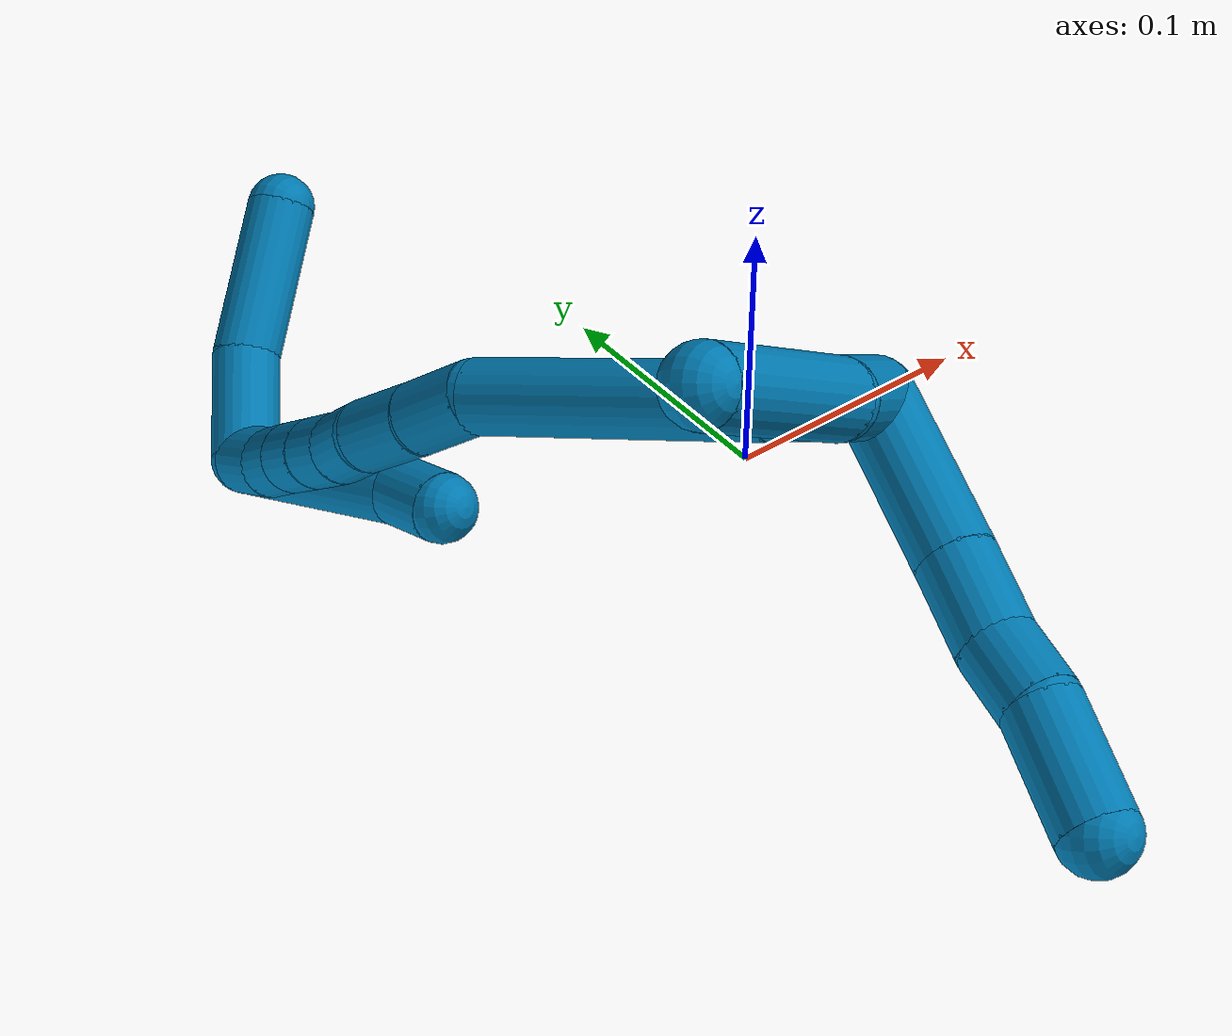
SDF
<sdf version="1.7">
 <world name="default">
  <model name="9">
   <static>0</static>
   <link name="9">
    <collision name="collision-cylinder-e_1_2_8">
     <pose>-0.002216 -0.023482 0.0169 0.946969 -0.076444 -0.039181</pose>
     <geometry><cylinder><radius>0.0125</radius><length>0.058033</length></cylinder></geometry>
     <surface>
      <friction><ode><mu>1.16</mu><mu2>1.16</mu2><slip1>0</slip1><slip2>0</slip2></ode></friction>
      <contact><ode><kp>1e+06</kp><kd>1</kd><max_vel>0</max_vel><min_depth>0.001</min_depth></ode></contact>
     </surface>
    </collision>
    <visual name="visual-cylinder-e_1_2_8">
     <pose>-0.002216 -0.023482 0.0169 0.946969 -0.076444 -0.039181</pose>
     <geometry><cylinder><radius>0.0125</radius><length>0.058033</length></cylinder></geometry>
     <material><ambient>0 0.490196 0.709804 1</ambient></material>
    </visual>
    <collision name="collision-cylinder-e_2_8_9">
     <pose>-0.005584 -0.058688 0.041935 0.964197 -0.080557 -0.042171</pose>
     <geometry><cylinder><radius>0.0125</radius><length>0.028631</length></cylinder></geometry>
     <surface>
      <friction><ode><mu>1.16</mu><mu2>1.16</mu2><slip1>0</slip1><slip2>0</slip2></ode></friction>
      <contact><ode><kp>1e+06</kp><kd>1</kd><max_vel>0</max_vel><min_depth>0.001</min_depth></ode></contact>
     </surface>
    </collision>
    <visual name="visual-cylinder-e_2_8_9">
     <pose>-0.005584 -0.058688 0.041935 0.964197 -0.080557 -0.042171</pose>
     <geometry><cylinder><radius>0.0125</radius><length>0.028631</length></cylinder></geometry>
     <material><ambient>0 0.490196 0.709804 1</ambient></material>
    </visual>
    <collision name="collision-cylinder-e_3_9_10">
     <pose>-0.008225 -0.078465 0.058739 0.748545 -0.125147 -0.049211</pose>
     <geometry><cylinder><radius>0.0125</radius><length>0.023852</length></cylinder></geometry>
     <surface>
      <friction><ode><mu>1.16</mu><mu2>1.16</mu2><slip1>0</slip1><slip2>0</slip2></ode></friction>
      <contact><ode><kp>1e+06</kp><kd>1</kd><max_vel>0</max_vel><min_depth>0.001</min_depth></ode></contact>
     </surface>
    </collision>
    <visual name="visual-cylinder-e_3_9_10">
     <pose>-0.008225 -0.078465 0.058739 0.748545 -0.125147 -0.049211</pose>
     <geometry><cylinder><radius>0.0125</radius><length>0.023852</length></cylinder></geometry>
     <material><ambient>0 0.490196 0.709804 1</ambient></material>
    </visual>
    <collision name="collision-cylinder-e_4_10_6">
     <pose>-0.012105 -0.102667 0.078509 0.968624 -0.121472 -0.063964</pose>
     <geometry><cylinder><radius>0.0125</radius><length>0.039484</length></cylinder></geometry>
     <surface>
      <friction><ode><mu>1.16</mu><mu2>1.16</mu2><slip1>0</slip1><slip2>0</slip2></ode></friction>
      <contact><ode><kp>1e+06</kp><kd>1</kd><max_vel>0</max_vel><min_depth>0.001</min_depth></ode></contact>
     </surface>
    </collision>
    <visual name="visual-cylinder-e_4_10_6">
     <pose>-0.012105 -0.102667 0.078509 0.968624 -0.121472 -0.063964</pose>
     <geometry><cylinder><radius>0.0125</radius><length>0.039484</length></cylinder></geometry>
     <material><ambient>0 0.490196 0.709804 1</ambient></material>
    </visual>
    <collision name="collision-cylinder-e_1_2_11">
     <pose>-0.015411 -0.001031 0.006266 0.163025 -1.17996 -0.109283</pose>
     <geometry><cylinder><radius>0.0125</radius><length>0.033336</length></cylinder></geometry>
     <surface>
      <friction><ode><mu>1.16</mu><mu2>1.16</mu2><slip1>0</slip1><slip2>0</slip2></ode></friction>
      <contact><ode><kp>1e+06</kp><kd>1</kd><max_vel>0</max_vel><min_depth>0.001</min_depth></ode></contact>
     </surface>
    </collision>
    <visual name="visual-cylinder-e_1_2_11">
     <pose>-0.015411 -0.001031 0.006266 0.163025 -1.17996 -0.109283</pose>
     <geometry><cylinder><radius>0.0125</radius><length>0.033336</length></cylinder></geometry>
     <material><ambient>0 0.490196 0.709804 1</ambient></material>
    </visual>
    <collision name="collision-cylinder-e_2_11_5">
     <pose>-0.063785 -0.001631 0.017462 -0.087079 -1.42175 0.074992</pose>
     <geometry><cylinder><radius>0.0125</radius><length>0.066664</length></cylinder></geometry>
     <surface>
      <friction><ode><mu>1.16</mu><mu2>1.16</mu2><slip1>0</slip1><slip2>0</slip2></ode></friction>
      <contact><ode><kp>1e+06</kp><kd>1</kd><max_vel>0</max_vel><min_depth>0.001</min_depth></ode></contact>
     </surface>
    </collision>
    <visual name="visual-cylinder-e_2_11_5">
     <pose>-0.063785 -0.001631 0.017462 -0.087079 -1.42175 0.074992</pose>
     <geometry><cylinder><radius>0.0125</radius><length>0.066664</length></cylinder></geometry>
     <material><ambient>0 0.490196 0.709804 1</ambient></material>
    </visual>
    <collision name="collision-cylinder-e_1_2_12">
     <pose>-0.004397 -0.00031 -0.016604 3.12294 -0.258837 -2.99851</pose>
     <geometry><cylinder><radius>0.0125</radius><length>0.034359</length></cylinder></geometry>
     <surface>
      <friction><ode><mu>1.16</mu><mu2>1.16</mu2><slip1>0</slip1><slip2>0</slip2></ode></friction>
      <contact><ode><kp>1e+06</kp><kd>1</kd><max_vel>0</max_vel><min_depth>0.001</min_depth></ode></contact>
     </surface>
    </collision>
    <visual name="visual-cylinder-e_1_2_12">
     <pose>-0.004397 -0.00031 -0.016604 3.12294 -0.258837 -2.99851</pose>
     <geometry><cylinder><radius>0.0125</radius><length>0.034359</length></cylinder></geometry>
     <material><ambient>0 0.490196 0.709804 1</ambient></material>
    </visual>
    <collision name="collision-cylinder-e_2_12_13">
     <pose>-0.021035 0.001081 -0.084609 -3.10853 -0.23366 2.86169</pose>
     <geometry><cylinder><radius>0.0125</radius><length>0.105729</length></cylinder></geometry>
     <surface>
      <friction><ode><mu>1.16</mu><mu2>1.16</mu2><slip1>0</slip1><slip2>0</slip2></ode></friction>
      <contact><ode><kp>1e+06</kp><kd>1</kd><max_vel>0</max_vel><min_depth>0.001</min_depth></ode></contact>
     </surface>
    </collision>
    <visual name="visual-cylinder-e_2_12_13">
     <pose>-0.021035 0.001081 -0.084609 -3.10853 -0.23366 2.86169</pose>
     <geometry><cylinder><radius>0.0125</radius><length>0.105729</length></cylinder></geometry>
     <material><ambient>0 0.490196 0.709804 1</ambient></material>
    </visual>
    <collision name="collision-cylinder-e_3_13_14">
     <pose>-0.03341 -0.0004 -0.149506 2.91015 -0.009757 -0.08389</pose>
     <geometry><cylinder><radius>0.0125</radius><length>0.027737</length></cylinder></geometry>
     <surface>
      <friction><ode><mu>1.16</mu><mu2>1.16</mu2><slip1>0</slip1><slip2>0</slip2></ode></friction>
      <contact><ode><kp>1e+06</kp><kd>1</kd><max_vel>0</max_vel><min_depth>0.001</min_depth></ode></contact>
     </surface>
    </collision>
    <visual name="visual-cylinder-e_3_13_14">
     <pose>-0.03341 -0.0004 -0.149506 2.91015 -0.009757 -0.08389</pose>
     <geometry><cylinder><radius>0.0125</radius><length>0.027737</length></cylinder></geometry>
     <material><ambient>0 0.490196 0.709804 1</ambient></material>
    </visual>
    <collision name="collision-cylinder-e_4_14_15">
     <pose>-0.032345 -0.006139 -0.177365 2.96532 0.082094 0.870174</pose>
     <geometry><cylinder><radius>0.0125</radius><length>0.029272</length></cylinder></geometry>
     <surface>
      <friction><ode><mu>1.16</mu><mu2>1.16</mu2><slip1>0</slip1><slip2>0</slip2></ode></friction>
      <contact><ode><kp>1e+06</kp><kd>1</kd><max_vel>0</max_vel><min_depth>0.001</min_depth></ode></contact>
     </surface>
    </collision>
    <visual name="visual-cylinder-e_4_14_15">
     <pose>-0.032345 -0.006139 -0.177365 2.96532 0.082094 0.870174</pose>
     <geometry><cylinder><radius>0.0125</radius><length>0.029272</length></cylinder></geometry>
     <material><ambient>0 0.490196 0.709804 1</ambient></material>
    </visual>
    <collision name="collision-cylinder-e_5_15_16">
     <pose>-0.028055 -0.010399 -0.201701 2.9726 0.296361 2.1094</pose>
     <geometry><cylinder><radius>0.0125</radius><length>0.021161</length></cylinder></geometry>
     <surface>
      <friction><ode><mu>1.16</mu><mu2>1.16</mu2><slip1>0</slip1><slip2>0</slip2></ode></friction>
      <contact><ode><kp>1e+06</kp><kd>1</kd><max_vel>0</max_vel><min_depth>0.001</min_depth></ode></contact>
     </surface>
    </collision>
    <visual name="visual-cylinder-e_5_15_16">
     <pose>-0.028055 -0.010399 -0.201701 2.9726 0.296361 2.1094</pose>
     <geometry><cylinder><radius>0.0125</radius><length>0.021161</length></cylinder></geometry>
     <material><ambient>0 0.490196 0.709804 1</ambient></material>
    </visual>
    <collision name="collision-cylinder-e_6_16_17">
     <pose>-0.02257 -0.012822 -0.221547 3.06873 0.237458 2.54852</pose>
     <geometry><cylinder><radius>0.0125</radius><length>0.020366</length></cylinder></geometry>
     <surface>
      <friction><ode><mu>1.16</mu><mu2>1.16</mu2><slip1>0</slip1><slip2>0</slip2></ode></friction>
      <contact><ode><kp>1e+06</kp><kd>1</kd><max_vel>0</max_vel><min_depth>0.001</min_depth></ode></contact>
     </surface>
    </collision>
    <visual name="visual-cylinder-e_6_16_17">
     <pose>-0.02257 -0.012822 -0.221547 3.06873 0.237458 2.54852</pose>
     <geometry><cylinder><radius>0.0125</radius><length>0.020366</length></cylinder></geometry>
     <material><ambient>0 0.490196 0.709804 1</ambient></material>
    </visual>
    <collision name="collision-cylinder-e_7_17_18">
     <pose>-0.017204 -0.014125 -0.241613 3.08453 0.28309 2.74624</pose>
     <geometry><cylinder><radius>0.0125</radius><length>0.02127</length></cylinder></geometry>
     <surface>
      <friction><ode><mu>1.16</mu><mu2>1.16</mu2><slip1>0</slip1><slip2>0</slip2></ode></friction>
      <contact><ode><kp>1e+06</kp><kd>1</kd><max_vel>0</max_vel><min_depth>0.001</min_depth></ode></contact>
     </surface>
    </collision>
    <visual name="visual-cylinder-e_7_17_18">
     <pose>-0.017204 -0.014125 -0.241613 3.08453 0.28309 2.74624</pose>
     <geometry><cylinder><radius>0.0125</radius><length>0.02127</length></cylinder></geometry>
     <material><ambient>0 0.490196 0.709804 1</ambient></material>
    </visual>
    <collision name="collision-cylinder-e_8_18_19">
     <pose>-0.011311 -0.015449 -0.261344 3.06392 0.296469 2.63245</pose>
     <geometry><cylinder><radius>0.0125</radius><length>0.020003</length></cylinder></geometry>
     <surface>
      <friction><ode><mu>1.16</mu><mu2>1.16</mu2><slip1>0</slip1><slip2>0</slip2></ode></friction>
      <contact><ode><kp>1e+06</kp><kd>1</kd><max_vel>0</max_vel><min_depth>0.001</min_depth></ode></contact>
     </surface>
    </collision>
    <visual name="visual-cylinder-e_8_18_19">
     <pose>-0.011311 -0.015449 -0.261344 3.06392 0.296469 2.63245</pose>
     <geometry><cylinder><radius>0.0125</radius><length>0.020003</length></cylinder></geometry>
     <material><ambient>0 0.490196 0.709804 1</ambient></material>
    </visual>
    <collision name="collision-cylinder-e_9_19_1">
     <pose>-0.006865 -0.015402 -0.280785 -3.06205 0.152236 -2.17978</pose>
     <geometry><cylinder><radius>0.0125</radius><length>0.020103</length></cylinder></geometry>
     <surface>
      <friction><ode><mu>1.16</mu><mu2>1.16</mu2><slip1>0</slip1><slip2>0</slip2></ode></friction>
      <contact><ode><kp>1e+06</kp><kd>1</kd><max_vel>0</max_vel><min_depth>0.001</min_depth></ode></contact>
     </surface>
    </collision>
    <visual name="visual-cylinder-e_9_19_1">
     <pose>-0.006865 -0.015402 -0.280785 -3.06205 0.152236 -2.17978</pose>
     <geometry><cylinder><radius>0.0125</radius><length>0.020103</length></cylinder></geometry>
     <material><ambient>0 0.490196 0.709804 1</ambient></material>
    </visual>
    <collision name="collision-cylinder-e_1_1_20">
     <pose>0.000347 -0.020305 -0.254578 0.156355 0.154341 0.012115</pose>
     <geometry><cylinder><radius>0.0125</radius><length>0.073992</length></cylinder></geometry>
     <surface>
      <friction><ode><mu>1.16</mu><mu2>1.16</mu2><slip1>0</slip1><slip2>0</slip2></ode></friction>
      <contact><ode><kp>1e+06</kp><kd>1</kd><max_vel>0</max_vel><min_depth>0.001</min_depth></ode></contact>
     </surface>
    </collision>
    <visual name="visual-cylinder-e_1_1_20">
     <pose>0.000347 -0.020305 -0.254578 0.156355 0.154341 0.012115</pose>
     <geometry><cylinder><radius>0.0125</radius><length>0.073992</length></cylinder></geometry>
     <material><ambient>0 0.490196 0.709804 1</ambient></material>
    </visual>
    <collision name="collision-cylinder-e_2_20_4">
     <pose>0.004889 -0.0291 -0.205891 0.24182 -0.088148 -0.010717</pose>
     <geometry><cylinder><radius>0.0125</radius><length>0.026008</length></cylinder></geometry>
     <surface>
      <friction><ode><mu>1.16</mu><mu2>1.16</mu2><slip1>0</slip1><slip2>0</slip2></ode></friction>
      <contact><ode><kp>1e+06</kp><kd>1</kd><max_vel>0</max_vel><min_depth>0.001</min_depth></ode></contact>
     </surface>
    </collision>
    <visual name="visual-cylinder-e_2_20_4">
     <pose>0.004889 -0.0291 -0.205891 0.24182 -0.088148 -0.010717</pose>
     <geometry><cylinder><radius>0.0125</radius><length>0.026008</length></cylinder></geometry>
     <material><ambient>0 0.490196 0.709804 1</ambient></material>
    </visual>
    <collision name="collision-cylinder-e_1_1_21">
     <pose>-0.000754 0.004482 -0.296697 -1.87567 0.225267 -0.305943</pose>
     <geometry><cylinder><radius>0.0125</radius><length>0.041073</length></cylinder></geometry>
     <surface>
      <friction><ode><mu>1.16</mu><mu2>1.16</mu2><slip1>0</slip1><slip2>0</slip2></ode></friction>
      <contact><ode><kp>1e+06</kp><kd>1</kd><max_vel>0</max_vel><min_depth>0.001</min_depth></ode></contact>
     </surface>
    </collision>
    <visual name="visual-cylinder-e_1_1_21">
     <pose>-0.000754 0.004482 -0.296697 -1.87567 0.225267 -0.305943</pose>
     <geometry><cylinder><radius>0.0125</radius><length>0.041073</length></cylinder></geometry>
     <material><ambient>0 0.490196 0.709804 1</ambient></material>
    </visual>
    <collision name="collision-cylinder-e_2_21_3">
     <pose>0.01206 0.051863 -0.303241 -1.5897 0.282988 -0.288314</pose>
     <geometry><cylinder><radius>0.0125</radius><length>0.058927</length></cylinder></geometry>
     <surface>
      <friction><ode><mu>1.16</mu><mu2>1.16</mu2><slip1>0</slip1><slip2>0</slip2></ode></friction>
      <contact><ode><kp>1e+06</kp><kd>1</kd><max_vel>0</max_vel><min_depth>0.001</min_depth></ode></contact>
     </surface>
    </collision>
    <visual name="visual-cylinder-e_2_21_3">
     <pose>0.01206 0.051863 -0.303241 -1.5897 0.282988 -0.288314</pose>
     <geometry><cylinder><radius>0.0125</radius><length>0.058927</length></cylinder></geometry>
     <material><ambient>0 0.490196 0.709804 1</ambient></material>
    </visual>
    <collision name="collision-sphere-3">
     <pose>0.020287 0.08015 -0.303775 0 -0 0</pose>
     <geometry><sphere><radius>0.0125</radius></sphere></geometry>
     <surface>
      <friction><ode><mu>1.16</mu><mu2>1.16</mu2><slip1>0</slip1><slip2>0</slip2></ode></friction>
      <contact><ode><kp>1e+06</kp><kd>1</kd><max_vel>0</max_vel><min_depth>0.001</min_depth></ode></contact>
     </surface>
    </collision>
    <visual name="visual-sphere-3">
     <pose>0.020287 0.08015 -0.303775 0 -0 0</pose>
     <geometry><sphere><radius>0.0125</radius></sphere></geometry>
     <material><ambient>0 0.490196 0.709804 1</ambient></material>
    </visual>
    <collision name="collision-sphere-21">
     <pose>0.003833 0.023576 -0.302706 0 -0 0</pose>
     <geometry><sphere><radius>0.0125</radius></sphere></geometry>
     <surface>
      <friction><ode><mu>1.16</mu><mu2>1.16</mu2><slip1>0</slip1><slip2>0</slip2></ode></friction>
      <contact><ode><kp>1e+06</kp><kd>1</kd><max_vel>0</max_vel><min_depth>0.001</min_depth></ode></contact>
     </surface>
    </collision>
    <visual name="visual-sphere-21">
     <pose>0.003833 0.023576 -0.302706 0 -0 0</pose>
     <geometry><sphere><radius>0.0125</radius></sphere></geometry>
     <material><ambient>0 0.490196 0.709804 1</ambient></material>
    </visual>
    <collision name="collision-sphere-4">
     <pose>0.003744 -0.032202 -0.193315 0 -0 0</pose>
     <geometry><sphere><radius>0.0125</radius></sphere></geometry>
     <surface>
      <friction><ode><mu>1.16</mu><mu2>1.16</mu2><slip1>0</slip1><slip2>0</slip2></ode></friction>
      <contact><ode><kp>1e+06</kp><kd>1</kd><max_vel>0</max_vel><min_depth>0.001</min_depth></ode></contact>
     </surface>
    </collision>
    <visual name="visual-sphere-4">
     <pose>0.003744 -0.032202 -0.193315 0 -0 0</pose>
     <geometry><sphere><radius>0.0125</radius></sphere></geometry>
     <material><ambient>0 0.490196 0.709804 1</ambient></material>
    </visual>
    <collision name="collision-sphere-20">
     <pose>0.006034 -0.025998 -0.218468 0 -0 0</pose>
     <geometry><sphere><radius>0.0125</radius></sphere></geometry>
     <surface>
      <friction><ode><mu>1.16</mu><mu2>1.16</mu2><slip1>0</slip1><slip2>0</slip2></ode></friction>
      <contact><ode><kp>1e+06</kp><kd>1</kd><max_vel>0</max_vel><min_depth>0.001</min_depth></ode></contact>
     </surface>
    </collision>
    <visual name="visual-sphere-20">
     <pose>0.006034 -0.025998 -0.218468 0 -0 0</pose>
     <geometry><sphere><radius>0.0125</radius></sphere></geometry>
     <material><ambient>0 0.490196 0.709804 1</ambient></material>
    </visual>
    <collision name="collision-sphere-11">
     <pose>-0.030822 -0.002061 0.012531 0 -0 0</pose>
     <geometry><sphere><radius>0.0125</radius></sphere></geometry>
     <surface>
      <friction><ode><mu>1.16</mu><mu2>1.16</mu2><slip1>0</slip1><slip2>0</slip2></ode></friction>
      <contact><ode><kp>1e+06</kp><kd>1</kd><max_vel>0</max_vel><min_depth>0.001</min_depth></ode></contact>
     </surface>
    </collision>
    <visual name="visual-sphere-11">
     <pose>-0.030822 -0.002061 0.012531 0 -0 0</pose>
     <geometry><sphere><radius>0.0125</radius></sphere></geometry>
     <material><ambient>0 0.490196 0.709804 1</ambient></material>
    </visual>
    <collision name="collision-sphere-6">
     <pose>-0.014498 -0.118817 0.089609 0 -0 0</pose>
     <geometry><sphere><radius>0.0125</radius></sphere></geometry>
     <surface>
      <friction><ode><mu>1.16</mu><mu2>1.16</mu2><slip1>0</slip1><slip2>0</slip2></ode></friction>
      <contact><ode><kp>1e+06</kp><kd>1</kd><max_vel>0</max_vel><min_depth>0.001</min_depth></ode></contact>
     </surface>
    </collision>
    <visual name="visual-sphere-6">
     <pose>-0.014498 -0.118817 0.089609 0 -0 0</pose>
     <geometry><sphere><radius>0.0125</radius></sphere></geometry>
     <material><ambient>0 0.490196 0.709804 1</ambient></material>
    </visual>
    <collision name="collision-sphere-10">
     <pose>-0.009713 -0.086518 0.067409 0 -0 0</pose>
     <geometry><sphere><radius>0.0125</radius></sphere></geometry>
     <surface>
      <friction><ode><mu>1.16</mu><mu2>1.16</mu2><slip1>0</slip1><slip2>0</slip2></ode></friction>
      <contact><ode><kp>1e+06</kp><kd>1</kd><max_vel>0</max_vel><min_depth>0.001</min_depth></ode></contact>
     </surface>
    </collision>
    <visual name="visual-sphere-10">
     <pose>-0.009713 -0.086518 0.067409 0 -0 0</pose>
     <geometry><sphere><radius>0.0125</radius></sphere></geometry>
     <material><ambient>0 0.490196 0.709804 1</ambient></material>
    </visual>
    <collision name="collision-sphere-9">
     <pose>-0.006736 -0.070412 0.05007 0 -0 0</pose>
     <geometry><sphere><radius>0.0125</radius></sphere></geometry>
     <surface>
      <friction><ode><mu>1.16</mu><mu2>1.16</mu2><slip1>0</slip1><slip2>0</slip2></ode></friction>
      <contact><ode><kp>1e+06</kp><kd>1</kd><max_vel>0</max_vel><min_depth>0.001</min_depth></ode></contact>
     </surface>
    </collision>
    <visual name="visual-sphere-9">
     <pose>-0.006736 -0.070412 0.05007 0 -0 0</pose>
     <geometry><sphere><radius>0.0125</radius></sphere></geometry>
     <material><ambient>0 0.490196 0.709804 1</ambient></material>
    </visual>
    <collision name="collision-sphere-2">
     <geometry><sphere><radius>0.0125</radius></sphere></geometry>
     <surface>
      <friction><ode><mu>1.16</mu><mu2>1.16</mu2><slip1>0</slip1><slip2>0</slip2></ode></friction>
      <contact><ode><kp>1e+06</kp><kd>1</kd><max_vel>0</max_vel><min_depth>0.001</min_depth></ode></contact>
     </surface>
    </collision>
    <visual name="visual-sphere-2">
     <geometry><sphere><radius>0.0125</radius></sphere></geometry>
     <material><ambient>0 0.490196 0.709804 1</ambient></material>
    </visual>
    <collision name="collision-sphere-19">
     <pose>-0.008389 -0.016191 -0.270881 0 -0 0</pose>
     <geometry><sphere><radius>0.0125</radius></sphere></geometry>
     <surface>
      <friction><ode><mu>1.16</mu><mu2>1.16</mu2><slip1>0</slip1><slip2>0</slip2></ode></friction>
      <contact><ode><kp>1e+06</kp><kd>1</kd><max_vel>0</max_vel><min_depth>0.001</min_depth></ode></contact>
     </surface>
    </collision>
    <visual name="visual-sphere-19">
     <pose>-0.008389 -0.016191 -0.270881 0 -0 0</pose>
     <geometry><sphere><radius>0.0125</radius></sphere></geometry>
     <material><ambient>0 0.490196 0.709804 1</ambient></material>
    </visual>
    <collision name="collision-sphere-8">
     <pose>-0.004432 -0.046965 0.033801 0 -0 0</pose>
     <geometry><sphere><radius>0.0125</radius></sphere></geometry>
     <surface>
      <friction><ode><mu>1.16</mu><mu2>1.16</mu2><slip1>0</slip1><slip2>0</slip2></ode></friction>
      <contact><ode><kp>1e+06</kp><kd>1</kd><max_vel>0</max_vel><min_depth>0.001</min_depth></ode></contact>
     </surface>
    </collision>
    <visual name="visual-sphere-8">
     <pose>-0.004432 -0.046965 0.033801 0 -0 0</pose>
     <geometry><sphere><radius>0.0125</radius></sphere></geometry>
     <material><ambient>0 0.490196 0.709804 1</ambient></material>
    </visual>
    <collision name="collision-sphere-5">
     <pose>-0.096747 -0.0012 0.022393 0 -0 0</pose>
     <geometry><sphere><radius>0.0125</radius></sphere></geometry>
     <surface>
      <friction><ode><mu>1.16</mu><mu2>1.16</mu2><slip1>0</slip1><slip2>0</slip2></ode></friction>
      <contact><ode><kp>1e+06</kp><kd>1</kd><max_vel>0</max_vel><min_depth>0.001</min_depth></ode></contact>
     </surface>
    </collision>
    <visual name="visual-sphere-5">
     <pose>-0.096747 -0.0012 0.022393 0 -0 0</pose>
     <geometry><sphere><radius>0.0125</radius></sphere></geometry>
     <material><ambient>0 0.490196 0.709804 1</ambient></material>
    </visual>
    <collision name="collision-sphere-12">
     <pose>-0.008794 -0.00062 -0.033209 0 -0 0</pose>
     <geometry><sphere><radius>0.0125</radius></sphere></geometry>
     <surface>
      <friction><ode><mu>1.16</mu><mu2>1.16</mu2><slip1>0</slip1><slip2>0</slip2></ode></friction>
      <contact><ode><kp>1e+06</kp><kd>1</kd><max_vel>0</max_vel><min_depth>0.001</min_depth></ode></contact>
     </surface>
    </collision>
    <visual name="visual-sphere-12">
     <pose>-0.008794 -0.00062 -0.033209 0 -0 0</pose>
     <geometry><sphere><radius>0.0125</radius></sphere></geometry>
     <material><ambient>0 0.490196 0.709804 1</ambient></material>
    </visual>
    <collision name="collision-sphere-13">
     <pose>-0.033275 0.002781 -0.136008 0 -0 0</pose>
     <geometry><sphere><radius>0.0125</radius></sphere></geometry>
     <surface>
      <friction><ode><mu>1.16</mu><mu2>1.16</mu2><slip1>0</slip1><slip2>0</slip2></ode></friction>
      <contact><ode><kp>1e+06</kp><kd>1</kd><max_vel>0</max_vel><min_depth>0.001</min_depth></ode></contact>
     </surface>
    </collision>
    <visual name="visual-sphere-13">
     <pose>-0.033275 0.002781 -0.136008 0 -0 0</pose>
     <geometry><sphere><radius>0.0125</radius></sphere></geometry>
     <material><ambient>0 0.490196 0.709804 1</ambient></material>
    </visual>
    <collision name="collision-sphere-14">
     <pose>-0.033545 -0.003581 -0.163004 0 -0 0</pose>
     <geometry><sphere><radius>0.0125</radius></sphere></geometry>
     <surface>
      <friction><ode><mu>1.16</mu><mu2>1.16</mu2><slip1>0</slip1><slip2>0</slip2></ode></friction>
      <contact><ode><kp>1e+06</kp><kd>1</kd><max_vel>0</max_vel><min_depth>0.001</min_depth></ode></contact>
     </surface>
    </collision>
    <visual name="visual-sphere-14">
     <pose>-0.033545 -0.003581 -0.163004 0 -0 0</pose>
     <geometry><sphere><radius>0.0125</radius></sphere></geometry>
     <material><ambient>0 0.490196 0.709804 1</ambient></material>
    </visual>
    <collision name="collision-sphere-15">
     <pose>-0.031145 -0.008697 -0.191726 0 -0 0</pose>
     <geometry><sphere><radius>0.0125</radius></sphere></geometry>
     <surface>
      <friction><ode><mu>1.16</mu><mu2>1.16</mu2><slip1>0</slip1><slip2>0</slip2></ode></friction>
      <contact><ode><kp>1e+06</kp><kd>1</kd><max_vel>0</max_vel><min_depth>0.001</min_depth></ode></contact>
     </surface>
    </collision>
    <visual name="visual-sphere-15">
     <pose>-0.031145 -0.008697 -0.191726 0 -0 0</pose>
     <geometry><sphere><radius>0.0125</radius></sphere></geometry>
     <material><ambient>0 0.490196 0.709804 1</ambient></material>
    </visual>
    <collision name="collision-sphere-16">
     <pose>-0.024965 -0.012101 -0.211676 0 -0 0</pose>
     <geometry><sphere><radius>0.0125</radius></sphere></geometry>
     <surface>
      <friction><ode><mu>1.16</mu><mu2>1.16</mu2><slip1>0</slip1><slip2>0</slip2></ode></friction>
      <contact><ode><kp>1e+06</kp><kd>1</kd><max_vel>0</max_vel><min_depth>0.001</min_depth></ode></contact>
     </surface>
    </collision>
    <visual name="visual-sphere-16">
     <pose>-0.024965 -0.012101 -0.211676 0 -0 0</pose>
     <geometry><sphere><radius>0.0125</radius></sphere></geometry>
     <material><ambient>0 0.490196 0.709804 1</ambient></material>
    </visual>
    <collision name="collision-sphere-17">
     <pose>-0.020175 -0.013542 -0.231417 0 -0 0</pose>
     <geometry><sphere><radius>0.0125</radius></sphere></geometry>
     <surface>
      <friction><ode><mu>1.16</mu><mu2>1.16</mu2><slip1>0</slip1><slip2>0</slip2></ode></friction>
      <contact><ode><kp>1e+06</kp><kd>1</kd><max_vel>0</max_vel><min_depth>0.001</min_depth></ode></contact>
     </surface>
    </collision>
    <visual name="visual-sphere-17">
     <pose>-0.020175 -0.013542 -0.231417 0 -0 0</pose>
     <geometry><sphere><radius>0.0125</radius></sphere></geometry>
     <material><ambient>0 0.490196 0.709804 1</ambient></material>
    </visual>
    <collision name="collision-sphere-18">
     <pose>-0.014233 -0.014707 -0.251808 0 -0 0</pose>
     <geometry><sphere><radius>0.0125</radius></sphere></geometry>
     <surface>
      <friction><ode><mu>1.16</mu><mu2>1.16</mu2><slip1>0</slip1><slip2>0</slip2></ode></friction>
      <contact><ode><kp>1e+06</kp><kd>1</kd><max_vel>0</max_vel><min_depth>0.001</min_depth></ode></contact>
     </surface>
    </collision>
    <visual name="visual-sphere-18">
     <pose>-0.014233 -0.014707 -0.251808 0 -0 0</pose>
     <geometry><sphere><radius>0.0125</radius></sphere></geometry>
     <material><ambient>0 0.490196 0.709804 1</ambient></material>
    </visual>
    <collision name="collision-sphere-1">
     <pose>-0.005341 -0.014613 -0.290688 0 -0 0</pose>
     <geometry><sphere><radius>0.0125</radius></sphere></geometry>
     <surface>
      <friction><ode><mu>1.16</mu><mu2>1.16</mu2><slip1>0</slip1><slip2>0</slip2></ode></friction>
      <contact><ode><kp>1e+06</kp><kd>1</kd><max_vel>0</max_vel><min_depth>0.001</min_depth></ode></contact>
     </surface>
    </collision>
    <visual name="visual-sphere-1">
     <pose>-0.005341 -0.014613 -0.290688 0 -0 0</pose>
     <geometry><sphere><radius>0.0125</radius></sphere></geometry>
     <material><ambient>0 0.490196 0.709804 1</ambient></material>
    </visual>
    <inertial>
     <pose>-0.014571 -0.012824 -0.119784 0 -0 0</pose>
     <mass>0.75</mass>
     <inertia><ixx>1.5e-05</ixx><ixy>0</ixy><ixz>0</ixz><iyy>0.000211</iyy><iyz>0</iyz><izz>4e-05</izz></inertia>
    </inertial>
   </link>
   <pose>-0.078439 -0.144946 0.158712 1.01679 0.482712 -0.012951</pose>
  </model>
 </world>
</sdf>
